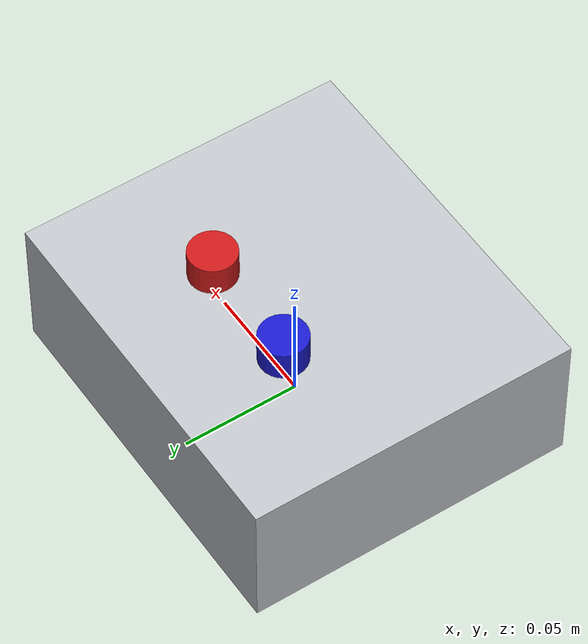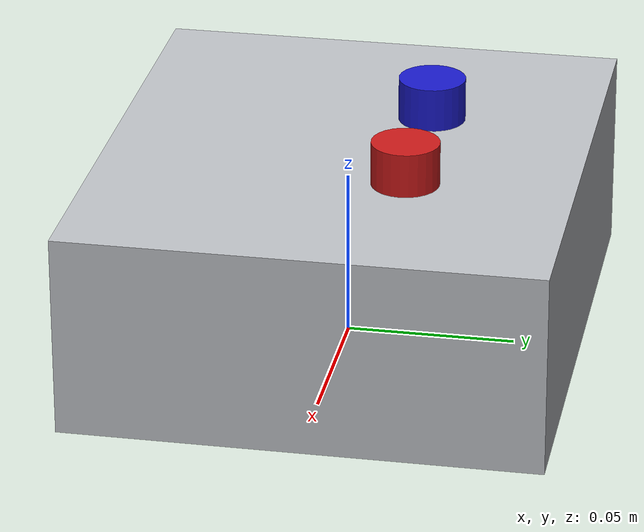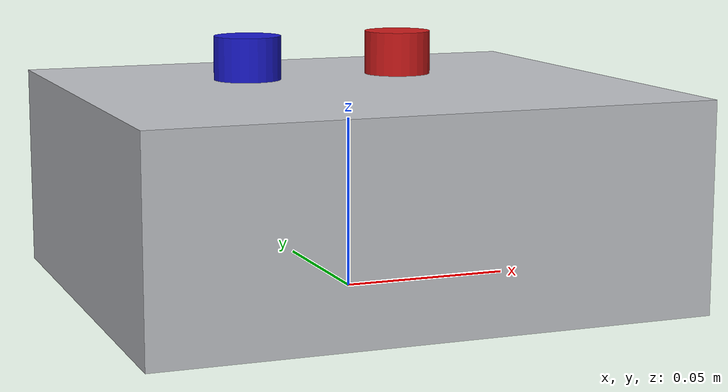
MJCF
<?xml version="1.0" encoding="utf-8"?>
<mujoco model="function_generator">
  <compiler angle="radian" autolimits="true"/>
  <default>
    <default class="body"><geom contype="1" conaffinity="1"/></default>
  </default>
  <worldbody>
    <body name="base">
      <geom type="box" size="0.08 0.07 0.03" pos="0 0 0.03" rgba="0.75 0.76 0.78 1" class="body"/>
      <geom type="cylinder" size="0.01 0.008" pos="-0.024 0.021 0.065" rgba="0.1 0.1 0.8 1" class="body"/>
      <body name="knob" pos="0.024 0.021 0.065">
        <joint name="knob_joint" type="hinge" axis="0 0 1" range="-3.14159 3.14159" damping="0.3" frictionloss="0.1"/>
  <geom type="cylinder" size="0.01 0.008" pos="0 0 0" rgba="0.8 0.1 0.1 1" class="body"/>
      </body>
    </body>
  </worldbody>
</mujoco>
